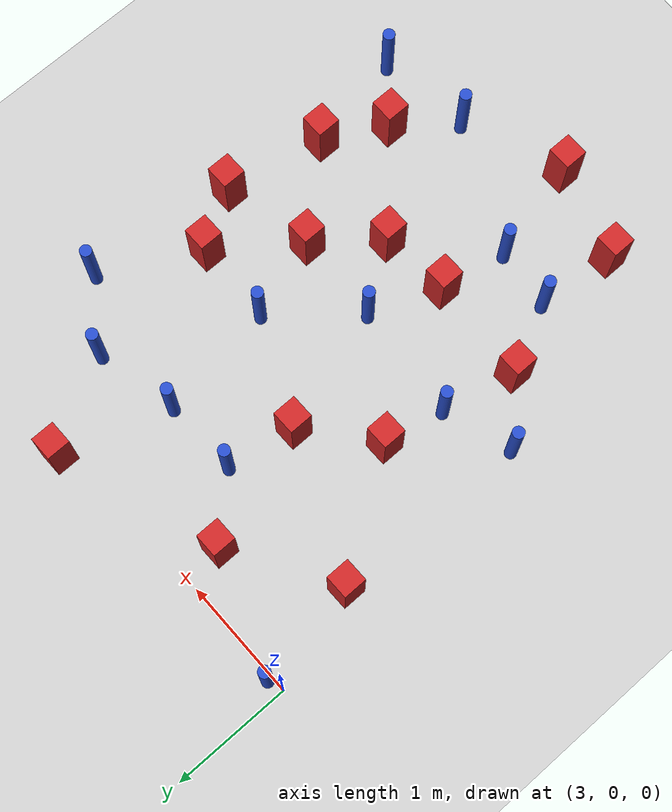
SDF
<sdf version="1.6">
 <world name="default">
  <model name="ground_plane">
   <static>1</static>
   <link name="link">
    <collision name="collision">
     <geometry><plane><normal>0 0 1</normal><size>100 100</size></plane></geometry>
     <surface><friction><ode><mu>100</mu><mu2>50</mu2></ode></friction></surface>
    </collision>
    <visual name="visual">
     <cast_shadows>0</cast_shadows>
     <geometry><plane><normal>0 0 1</normal><size>100 100</size></plane></geometry>
     <material>
      <ambient>1.0 1.0 1.0 1.0</ambient>
      <diffuse>0.8 0.8 0.8 1.0</diffuse>
      <specular>0.01 0.01 0.01 1.000000</specular>
     </material>
    </visual>
   </link>
  </model>
  <model name="square_post_obstacle2">
   <static>true</static>
   <pose>3.85165815394 -4.12469330242 8.22691968438e-08 7.2212513382e-06 -7.54495500217e-07 2.29674213826e-05</pose>
   <link name="link">
    <pose>0 0 0.25 0 -0 0</pose>
    <inertial>
     <mass>100</mass>
     <inertia>
      <ixx>0.166667</ixx>
      <ixy>0</ixy>
      <ixz>0</ixz>
      <iyy>0.166667</iyy>
      <iyz>0</iyz>
      <izz>0.166667</izz>
     </inertia>
    </inertial>
    <collision name="collision"><geometry><box><size>.2 .2 .5</size></box></geometry></collision>
    <visual name="visual">
     <geometry><box><size>.2 .2 .5</size></box></geometry>
     <material>
      <script><name>Gazebo/Red</name><uri>file://media/materials/scripts/gazebo.material</uri></script>
     </material>
    </visual>
   </link>
  </model>
  <model name="pole_obstacle5">
   <static>true</static>
   <pose>6.26475696743 -3.95670145354 2.88873142074e-08 -9.90536690067e-09 4.60219948984e-07 -1.20965994963e-07</pose>
   <link name="link">
    <pose>0 0 0.3 0 -0 0</pose>
    <inertial>
     <mass>1</mass>
     <inertia><ixx>0.145833</ixx><ixy>0</ixy><ixz>0</ixz><iyy>0.145833</iyy><iyz>0</iyz><izz>0.125</izz></inertia>
    </inertial>
    <collision name="collision">
     <geometry><cylinder><radius>0.05</radius><length>.6</length></cylinder></geometry>
    </collision>
    <visual name="visual">
     <geometry><cylinder><radius>0.05</radius><length>.6</length></cylinder></geometry>
     <material>
      <script><name>Gazebo/Blue</name><uri>file://media/materials/scripts/gazebo.material</uri></script>
     </material>
    </visual>
   </link>
  </model>
  <model name="square_post_obstacle7">
   <static>true</static>
   <pose>5.98990536124 -1.79606220734 8.22691968438e-08 7.2212513382e-06 -7.54495500217e-07 2.29674213826e-05</pose>
   <link name="link">
    <pose>0 0 0.25 0 -0 0</pose>
    <inertial>
     <mass>100</mass>
     <inertia>
      <ixx>0.166667</ixx>
      <ixy>0</ixy>
      <ixz>0</ixz>
      <iyy>0.166667</iyy>
      <iyz>0</iyz>
      <izz>0.166667</izz>
     </inertia>
    </inertial>
    <collision name="collision"><geometry><box><size>.2 .2 .5</size></box></geometry></collision>
    <visual name="visual">
     <geometry><box><size>.2 .2 .5</size></box></geometry>
     <material>
      <script><name>Gazebo/Red</name><uri>file://media/materials/scripts/gazebo.material</uri></script>
     </material>
    </visual>
   </link>
  </model>
  <model name="square_post_obstacle14">
   <static>true</static>
   <pose>4.10795754205 -0.32786102376 8.22691968438e-08 7.2212513382e-06 -7.54495500217e-07 2.29674213826e-05</pose>
   <link name="link">
    <pose>0 0 0.25 0 -0 0</pose>
    <inertial>
     <mass>100</mass>
     <inertia>
      <ixx>0.166667</ixx>
      <ixy>0</ixy>
      <ixz>0</ixz>
      <iyy>0.166667</iyy>
      <iyz>0</iyz>
      <izz>0.166667</izz>
     </inertia>
    </inertial>
    <collision name="collision"><geometry><box><size>.2 .2 .5</size></box></geometry></collision>
    <visual name="visual">
     <geometry><box><size>.2 .2 .5</size></box></geometry>
     <material>
      <script><name>Gazebo/Red</name><uri>file://media/materials/scripts/gazebo.material</uri></script>
     </material>
    </visual>
   </link>
  </model>
  <model name="square_post_obstacle33">
   <static>true</static>
   <pose>3.25432993888 -0.835482280666 8.22691968438e-08 7.2212513382e-06 -7.54495500217e-07 2.29674213826e-05</pose>
   <link name="link">
    <pose>0 0 0.25 0 -0 0</pose>
    <inertial>
     <mass>100</mass>
     <inertia>
      <ixx>0.166667</ixx>
      <ixy>0</ixy>
      <ixz>0</ixz>
      <iyy>0.166667</iyy>
      <iyz>0</iyz>
      <izz>0.166667</izz>
     </inertia>
    </inertial>
    <collision name="collision"><geometry><box><size>.2 .2 .5</size></box></geometry></collision>
    <visual name="visual">
     <geometry><box><size>.2 .2 .5</size></box></geometry>
     <material>
      <script><name>Gazebo/Red</name><uri>file://media/materials/scripts/gazebo.material</uri></script>
     </material>
    </visual>
   </link>
  </model>
  <model name="pole_obstacle28">
   <static>true</static>
   <pose>5.87559320399 -0.621601489754 2.88873142074e-08 -9.90536689837e-09 4.60219948989e-07 -1.2096599496e-07</pose>
   <link name="link">
    <pose>0 0 0.3 0 -0 0</pose>
    <inertial>
     <mass>1</mass>
     <inertia><ixx>0.145833</ixx><ixy>0</ixy><ixz>0</ixz><iyy>0.145833</iyy><iyz>0</iyz><izz>0.125</izz></inertia>
    </inertial>
    <collision name="collision">
     <geometry><cylinder><radius>0.05</radius><length>.6</length></cylinder></geometry>
    </collision>
    <visual name="visual">
     <geometry><cylinder><radius>0.05</radius><length>.6</length></cylinder></geometry>
     <material>
      <script><name>Gazebo/Blue</name><uri>file://media/materials/scripts/gazebo.material</uri></script>
     </material>
    </visual>
   </link>
  </model>
  <model name="pole_obstacle35">
   <static>true</static>
   <pose>4.756151242 -2.39537260001 2.88873142074e-08 -9.90536690245e-09 4.6021994898e-07 -1.20965994966e-07</pose>
   <link name="link">
    <pose>0 0 0.3 0 -0 0</pose>
    <inertial>
     <mass>1</mass>
     <inertia><ixx>0.145833</ixx><ixy>0</ixy><ixz>0</ixz><iyy>0.145833</iyy><iyz>0</iyz><izz>0.125</izz></inertia>
    </inertial>
    <collision name="collision">
     <geometry><cylinder><radius>0.05</radius><length>.6</length></cylinder></geometry>
    </collision>
    <visual name="visual">
     <geometry><cylinder><radius>0.05</radius><length>.6</length></cylinder></geometry>
     <material>
      <script><name>Gazebo/Blue</name><uri>file://media/materials/scripts/gazebo.material</uri></script>
     </material>
    </visual>
   </link>
  </model>
  <model name="square_post_obstacle52">
   <static>true</static>
   <pose>5.50467891843 -2.42307064914 8.22691968438e-08 7.2212513382e-06 -7.54495500217e-07 2.29674213826e-05</pose>
   <link name="link">
    <pose>0 0 0.25 0 -0 0</pose>
    <inertial>
     <mass>100</mass>
     <inertia>
      <ixx>0.166667</ixx>
      <ixy>0</ixy>
      <ixz>0</ixz>
      <iyy>0.166667</iyy>
      <iyz>0</iyz>
      <izz>0.166667</izz>
     </inertia>
    </inertial>
    <collision name="collision"><geometry><box><size>.2 .2 .5</size></box></geometry></collision>
    <visual name="visual">
     <geometry><box><size>.2 .2 .5</size></box></geometry>
     <material>
      <script><name>Gazebo/Red</name><uri>file://media/materials/scripts/gazebo.material</uri></script>
     </material>
    </visual>
   </link>
  </model>
  <model name="pole_obstacle53">
   <static>true</static>
   <pose>5.17948409181 -0.767520164973 2.88873142074e-08 -9.90536689837e-09 4.60219948989e-07 -1.2096599496e-07</pose>
   <link name="link">
    <pose>0 0 0.3 0 -0 0</pose>
    <inertial>
     <mass>1</mass>
     <inertia><ixx>0.145833</ixx><ixy>0</ixy><ixz>0</ixz><iyy>0.145833</iyy><iyz>0</iyz><izz>0.125</izz></inertia>
    </inertial>
    <collision name="collision">
     <geometry><cylinder><radius>0.05</radius><length>.6</length></cylinder></geometry>
    </collision>
    <visual name="visual">
     <geometry><cylinder><radius>0.05</radius><length>.6</length></cylinder></geometry>
     <material>
      <script><name>Gazebo/Blue</name><uri>file://media/materials/scripts/gazebo.material</uri></script>
     </material>
    </visual>
   </link>
  </model>
  <model name="pole_obstacle75">
   <static>true</static>
   <pose>3.12755101685 0.0467829874637 2.88873142074e-08 -9.905366921e-09 4.60219948936e-07 -1.20965994985e-07</pose>
   <link name="link">
    <pose>0 0 0.3 0 -0 0</pose>
    <inertial>
     <mass>1</mass>
     <inertia><ixx>0.145833</ixx><ixy>0</ixy><ixz>0</ixz><iyy>0.145833</iyy><iyz>0</iyz><izz>0.125</izz></inertia>
    </inertial>
    <collision name="collision">
     <geometry><cylinder><radius>0.05</radius><length>.6</length></cylinder></geometry>
    </collision>
    <visual name="visual">
     <geometry><cylinder><radius>0.05</radius><length>.6</length></cylinder></geometry>
     <material>
      <script><name>Gazebo/Blue</name><uri>file://media/materials/scripts/gazebo.material</uri></script>
     </material>
    </visual>
   </link>
  </model>
  <model name="pole_obstacle81">
   <static>true</static>
   <pose>3.21252510521 -2.48405211228 2.88873142074e-08 -9.90536690232e-09 4.6021994898e-07 -1.20965994968e-07</pose>
   <link name="link">
    <pose>0 0 0.3 0 -0 0</pose>
    <inertial>
     <mass>1</mass>
     <inertia><ixx>0.145833</ixx><ixy>0</ixy><ixz>0</ixz><iyy>0.145833</iyy><iyz>0</iyz><izz>0.125</izz></inertia>
    </inertial>
    <collision name="collision">
     <geometry><cylinder><radius>0.05</radius><length>.6</length></cylinder></geometry>
    </collision>
    <visual name="visual">
     <geometry><cylinder><radius>0.05</radius><length>.6</length></cylinder></geometry>
     <material>
      <script><name>Gazebo/Blue</name><uri>file://media/materials/scripts/gazebo.material</uri></script>
     </material>
    </visual>
   </link>
  </model>
  <model name="pole_obstacle95">
   <static>true</static>
   <pose>6.42505223473 -1.00757508112 2.88873142074e-08 -9.90536689582e-09 4.60219948995e-07 -1.20965994957e-07</pose>
   <link name="link">
    <pose>0 0 0.3 0 -0 0</pose>
    <inertial>
     <mass>1</mass>
     <inertia><ixx>0.145833</ixx><ixy>0</ixy><ixz>0</ixz><iyy>0.145833</iyy><iyz>0</iyz><izz>0.125</izz></inertia>
    </inertial>
    <collision name="collision">
     <geometry><cylinder><radius>0.05</radius><length>.6</length></cylinder></geometry>
    </collision>
    <visual name="visual">
     <geometry><cylinder><radius>0.05</radius><length>.6</length></cylinder></geometry>
     <material>
      <script><name>Gazebo/Blue</name><uri>file://media/materials/scripts/gazebo.material</uri></script>
     </material>
    </visual>
   </link>
  </model>
  <model name="square_post_obstacle84">
   <static>true</static>
   <pose>3.8905847727 -1.79385234788 8.22691968438e-08 7.2212513382e-06 -7.54495500217e-07 2.29674213826e-05</pose>
   <link name="link">
    <pose>0 0 0.25 0 -0 0</pose>
    <inertial>
     <mass>100</mass>
     <inertia>
      <ixx>0.166667</ixx>
      <ixy>0</ixy>
      <ixz>0</ixz>
      <iyy>0.166667</iyy>
      <iyz>0</iyz>
      <izz>0.166667</izz>
     </inertia>
    </inertial>
    <collision name="collision"><geometry><box><size>.2 .2 .5</size></box></geometry></collision>
    <visual name="visual">
     <geometry><box><size>.2 .2 .5</size></box></geometry>
     <material>
      <script><name>Gazebo/Red</name><uri>file://media/materials/scripts/gazebo.material</uri></script>
     </material>
    </visual>
   </link>
  </model>
  <model name="pole_obstacle113">
   <static>true</static>
   <pose>4.53969968772 -0.78127037464 2.88873142074e-08 -9.90536689837e-09 4.60219948989e-07 -1.2096599496e-07</pose>
   <link name="link">
    <pose>0 0 0.3 0 -0 0</pose>
    <inertial>
     <mass>1</mass>
     <inertia><ixx>0.145833</ixx><ixy>0</ixy><ixz>0</ixz><iyy>0.145833</iyy><iyz>0</iyz><izz>0.125</izz></inertia>
    </inertial>
    <collision name="collision">
     <geometry><cylinder><radius>0.05</radius><length>.6</length></cylinder></geometry>
    </collision>
    <visual name="visual">
     <geometry><cylinder><radius>0.05</radius><length>.6</length></cylinder></geometry>
     <material>
      <script><name>Gazebo/Blue</name><uri>file://media/materials/scripts/gazebo.material</uri></script>
     </material>
    </visual>
   </link>
  </model>
  <model name="square_post_obstacle102">
   <static>true</static>
   <pose>4.52714573661 -2.96526096514 8.22691968438e-08 7.2212513382e-06 -7.54495500217e-07 2.29674213826e-05</pose>
   <link name="link">
    <pose>0 0 0.25 0 -0 0</pose>
    <inertial>
     <mass>100</mass>
     <inertia>
      <ixx>0.166667</ixx>
      <ixy>0</ixy>
      <ixz>0</ixz>
      <iyy>0.166667</iyy>
      <iyz>0</iyz>
      <izz>0.166667</izz>
     </inertia>
    </inertial>
    <collision name="collision"><geometry><box><size>.2 .2 .5</size></box></geometry></collision>
    <visual name="visual">
     <geometry><box><size>.2 .2 .5</size></box></geometry>
     <material>
      <script><name>Gazebo/Red</name><uri>file://media/materials/scripts/gazebo.material</uri></script>
     </material>
    </visual>
   </link>
  </model>
  <model name="square_post_obstacle105">
   <static>true</static>
   <pose>5.84259281527 -3.5965846946 8.22691968438e-08 7.2212513382e-06 -7.54495500217e-07 2.29674213826e-05</pose>
   <link name="link">
    <pose>0 0 0.25 0 -0 0</pose>
    <inertial>
     <mass>100</mass>
     <inertia>
      <ixx>0.166667</ixx>
      <ixy>0</ixy>
      <ixz>0</ixz>
      <iyy>0.166667</iyy>
      <iyz>0</iyz>
      <izz>0.166667</izz>
     </inertia>
    </inertial>
    <collision name="collision"><geometry><box><size>.2 .2 .5</size></box></geometry></collision>
    <visual name="visual">
     <geometry><box><size>.2 .2 .5</size></box></geometry>
     <material>
      <script><name>Gazebo/Red</name><uri>file://media/materials/scripts/gazebo.material</uri></script>
     </material>
    </visual>
   </link>
  </model>
  <model name="pole_obstacle132">
   <static>true</static>
   <pose>5.309895862 -1.76320937144 2.88873142074e-08 -9.90536689445e-09 4.60219948999e-07 -1.20965994956e-07</pose>
   <link name="link">
    <pose>0 0 0.3 0 -0 0</pose>
    <inertial>
     <mass>1</mass>
     <inertia><ixx>0.145833</ixx><ixy>0</ixy><ixz>0</ixz><iyy>0.145833</iyy><iyz>0</iyz><izz>0.125</izz></inertia>
    </inertial>
    <collision name="collision">
     <geometry><cylinder><radius>0.05</radius><length>.6</length></cylinder></geometry>
    </collision>
    <visual name="visual">
     <geometry><cylinder><radius>0.05</radius><length>.6</length></cylinder></geometry>
     <material>
      <script><name>Gazebo/Blue</name><uri>file://media/materials/scripts/gazebo.material</uri></script>
     </material>
    </visual>
   </link>
  </model>
  <model name="pole_obstacle137">
   <static>true</static>
   <pose>3.78920886814 -2.30298608527 2.88873142074e-08 -9.90536690232e-09 4.6021994898e-07 -1.20965994968e-07</pose>
   <link name="link">
    <pose>0 0 0.3 0 -0 0</pose>
    <inertial>
     <mass>1</mass>
     <inertia><ixx>0.145833</ixx><ixy>0</ixy><ixz>0</ixz><iyy>0.145833</iyy><iyz>0</iyz><izz>0.125</izz></inertia>
    </inertial>
    <collision name="collision">
     <geometry><cylinder><radius>0.05</radius><length>.6</length></cylinder></geometry>
    </collision>
    <visual name="visual">
     <geometry><cylinder><radius>0.05</radius><length>.6</length></cylinder></geometry>
     <material>
      <script><name>Gazebo/Blue</name><uri>file://media/materials/scripts/gazebo.material</uri></script>
     </material>
    </visual>
   </link>
  </model>
  <model name="square_post_obstacle125">
   <static>true</static>
   <pose>4.4359464179 -1.35121414048 8.22691968438e-08 7.2212513382e-06 -7.54495500217e-07 2.29674213826e-05</pose>
   <link name="link">
    <pose>0 0 0.25 0 -0 0</pose>
    <inertial>
     <mass>100</mass>
     <inertia>
      <ixx>0.166667</ixx>
      <ixy>0</ixy>
      <ixz>0</ixz>
      <iyy>0.166667</iyy>
      <iyz>0</iyz>
      <izz>0.166667</izz>
     </inertia>
    </inertial>
    <collision name="collision"><geometry><box><size>.2 .2 .5</size></box></geometry></collision>
    <visual name="visual">
     <geometry><box><size>.2 .2 .5</size></box></geometry>
     <material>
      <script><name>Gazebo/Red</name><uri>file://media/materials/scripts/gazebo.material</uri></script>
     </material>
    </visual>
   </link>
  </model>
  <model name="square_post_obstacle131">
   <static>true</static>
   <pose>6.26614889826 -2.26039911819 8.22691968438e-08 7.2212513382e-06 -7.54495500217e-07 2.29674213826e-05</pose>
   <link name="link">
    <pose>0 0 0.25 0 -0 0</pose>
    <inertial>
     <mass>100</mass>
     <inertia>
      <ixx>0.166667</ixx>
      <ixy>0</ixy>
      <ixz>0</ixz>
      <iyy>0.166667</iyy>
      <iyz>0</iyz>
      <izz>0.166667</izz>
     </inertia>
    </inertial>
    <collision name="collision"><geometry><box><size>.2 .2 .5</size></box></geometry></collision>
    <visual name="visual">
     <geometry><box><size>.2 .2 .5</size></box></geometry>
     <material>
      <script><name>Gazebo/Red</name><uri>file://media/materials/scripts/gazebo.material</uri></script>
     </material>
    </visual>
   </link>
  </model>
  <model name="pole_obstacle176">
   <static>true</static>
   <pose>4.41981229369 -3.53766775524 2.88873142074e-08 -9.90536690245e-09 4.6021994898e-07 -1.20965994966e-07</pose>
   <link name="link">
    <pose>0 0 0.3 0 -0 0</pose>
    <inertial>
     <mass>1</mass>
     <inertia><ixx>0.145833</ixx><ixy>0</ixy><ixz>0</ixz><iyy>0.145833</iyy><iyz>0</iyz><izz>0.125</izz></inertia>
    </inertial>
    <collision name="collision">
     <geometry><cylinder><radius>0.05</radius><length>.6</length></cylinder></geometry>
    </collision>
    <visual name="visual">
     <geometry><cylinder><radius>0.05</radius><length>.6</length></cylinder></geometry>
     <material>
      <script><name>Gazebo/Blue</name><uri>file://media/materials/scripts/gazebo.material</uri></script>
     </material>
    </visual>
   </link>
  </model>
  <model name="square_post_obstacle180">
   <static>true</static>
   <pose>3.65167283184 -2.91243061652 8.22691968438e-08 7.2212513382e-06 -7.54495500217e-07 2.29674213826e-05</pose>
   <link name="link">
    <pose>0 0 0.25 0 -0 0</pose>
    <inertial>
     <mass>100</mass>
     <inertia>
      <ixx>0.166667</ixx>
      <ixy>0</ixy>
      <ixz>0</ixz>
      <iyy>0.166667</iyy>
      <iyz>0</iyz>
      <izz>0.166667</izz>
     </inertia>
    </inertial>
    <collision name="collision"><geometry><box><size>.2 .2 .5</size></box></geometry></collision>
    <visual name="visual">
     <geometry><box><size>.2 .2 .5</size></box></geometry>
     <material>
      <script><name>Gazebo/Red</name><uri>file://media/materials/scripts/gazebo.material</uri></script>
     </material>
    </visual>
   </link>
  </model>
  <model name="square_post_obstacle187">
   <static>true</static>
   <pose>5.10520952193 -2.91314823976 8.22691968438e-08 7.2212513382e-06 -7.54495500217e-07 2.29674213826e-05</pose>
   <link name="link">
    <pose>0 0 0.25 0 -0 0</pose>
    <inertial>
     <mass>100</mass>
     <inertia>
      <ixx>0.166667</ixx>
      <ixy>0</ixy>
      <ixz>0</ixz>
      <iyy>0.166667</iyy>
      <iyz>0</iyz>
      <izz>0.166667</izz>
     </inertia>
    </inertial>
    <collision name="collision"><geometry><box><size>.2 .2 .5</size></box></geometry></collision>
    <visual name="visual">
     <geometry><box><size>.2 .2 .5</size></box></geometry>
     <material>
      <script><name>Gazebo/Red</name><uri>file://media/materials/scripts/gazebo.material</uri></script>
     </material>
    </visual>
   </link>
  </model>
  <model name="square_post_obstacle192">
   <static>true</static>
   <pose>6.10555177317 -3.09945006793 8.22691968438e-08 7.2212513382e-06 -7.54495500217e-07 2.29674213826e-05</pose>
   <link name="link">
    <pose>0 0 0.25 0 -0 0</pose>
    <inertial>
     <mass>100</mass>
     <inertia>
      <ixx>0.166667</ixx>
      <ixy>0</ixy>
      <ixz>0</ixz>
      <iyy>0.166667</iyy>
      <iyz>0</iyz>
      <izz>0.166667</izz>
     </inertia>
    </inertial>
    <collision name="collision"><geometry><box><size>.2 .2 .5</size></box></geometry></collision>
    <visual name="visual">
     <geometry><box><size>.2 .2 .5</size></box></geometry>
     <material>
      <script><name>Gazebo/Red</name><uri>file://media/materials/scripts/gazebo.material</uri></script>
     </material>
    </visual>
   </link>
  </model>
  <model name="square_post_obstacle193">
   <static>true</static>
   <pose>5.46943510062 0.117976384554 8.22691968438e-08 7.2212513382e-06 -7.54495500217e-07 2.29674213826e-05</pose>
   <link name="link">
    <pose>0 0 0.25 0 -0 0</pose>
    <inertial>
     <mass>100</mass>
     <inertia>
      <ixx>0.166667</ixx>
      <ixy>0</ixy>
      <ixz>0</ixz>
      <iyy>0.166667</iyy>
      <iyz>0</iyz>
      <izz>0.166667</izz>
     </inertia>
    </inertial>
    <collision name="collision"><geometry><box><size>.2 .2 .5</size></box></geometry></collision>
    <visual name="visual">
     <geometry><box><size>.2 .2 .5</size></box></geometry>
     <material>
      <script><name>Gazebo/Red</name><uri>file://media/materials/scripts/gazebo.material</uri></script>
     </material>
    </visual>
   </link>
  </model>
  <model name="pole_obstacle189">
   <static>true</static>
   <pose>3.91364805777 -3.47344234898 2.88873142074e-08 -9.90536690232e-09 4.6021994898e-07 -1.20965994968e-07</pose>
   <link name="link">
    <pose>0 0 0.3 0 -0 0</pose>
    <inertial>
     <mass>1</mass>
     <inertia><ixx>0.145833</ixx><ixy>0</ixy><ixz>0</ixz><iyy>0.145833</iyy><iyz>0</iyz><izz>0.125</izz></inertia>
    </inertial>
    <collision name="collision">
     <geometry><cylinder><radius>0.05</radius><length>.6</length></cylinder></geometry>
    </collision>
    <visual name="visual">
     <geometry><cylinder><radius>0.05</radius><length>.6</length></cylinder></geometry>
     <material>
      <script><name>Gazebo/Blue</name><uri>file://media/materials/scripts/gazebo.material</uri></script>
     </material>
    </visual>
   </link>
  </model>
  <model name="pole_obstacle210">
   <static>true</static>
   <pose>5.47673551122 -4.0548783929 2.88873142074e-08 -9.90536690842e-09 4.60219948965e-07 -1.20965994976e-07</pose>
   <link name="link">
    <pose>0 0 0.3 0 -0 0</pose>
    <inertial>
     <mass>1</mass>
     <inertia><ixx>0.145833</ixx><ixy>0</ixy><ixz>0</ixz><iyy>0.145833</iyy><iyz>0</iyz><izz>0.125</izz></inertia>
    </inertial>
    <collision name="collision">
     <geometry><cylinder><radius>0.05</radius><length>.6</length></cylinder></geometry>
    </collision>
    <visual name="visual">
     <geometry><cylinder><radius>0.05</radius><length>.6</length></cylinder></geometry>
     <material>
      <script><name>Gazebo/Blue</name><uri>file://media/materials/scripts/gazebo.material</uri></script>
     </material>
    </visual>
   </link>
  </model>
  <model name="square_post_obstacle215">
   <static>true</static>
   <pose>4.62491003262 -4.35882003534 8.22691968438e-08 7.2212513382e-06 -7.54495500217e-07 2.29674213826e-05</pose>
   <link name="link">
    <pose>0 0 0.25 0 -0 0</pose>
    <inertial>
     <mass>100</mass>
     <inertia>
      <ixx>0.166667</ixx>
      <ixy>0</ixy>
      <ixz>0</ixz>
      <iyy>0.166667</iyy>
      <iyz>0</iyz>
      <izz>0.166667</izz>
     </inertia>
    </inertial>
    <collision name="collision"><geometry><box><size>.2 .2 .5</size></box></geometry></collision>
    <visual name="visual">
     <geometry><box><size>.2 .2 .5</size></box></geometry>
     <material>
      <script><name>Gazebo/Red</name><uri>file://media/materials/scripts/gazebo.material</uri></script>
     </material>
    </visual>
   </link>
  </model>
 </world>
</sdf>
